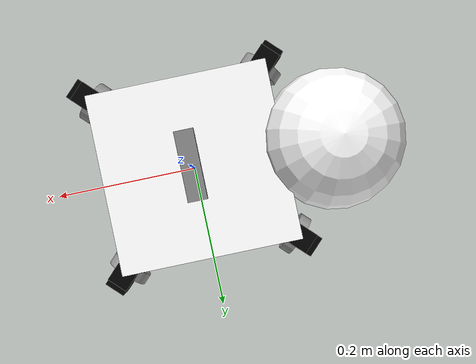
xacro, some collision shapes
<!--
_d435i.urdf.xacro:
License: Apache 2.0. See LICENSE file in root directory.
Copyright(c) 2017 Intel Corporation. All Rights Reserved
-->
<?xml version="1.0"?>
<robot name="conveyor" xmlns:xacro="http://www.ros.org/wiki/xacro">

    <!-- PROPERTY LIST -->

    <!-- Main Body Box -->
    <xacro:property name="base_length" value="0.255" /> <!-- in m-->
    <xacro:property name="base_height" value="0.04" /> <!-- in m-->
    <xacro:property name="base_mass" value="10" /> <!-- in kg-->

    <!-- caster wheel radius and height -->
    <!-- caster wheel mass -->
    <xacro:property name="servo_cube" value="0.03" /> <!-- in m-->
    <xacro:property name="servo_mass" value="2.5" /> <!-- in kg-->

    <!-- Hokuyo Laser scanner -->
    <xacro:property name="hokuyo_size" value="0.04" />

    <xacro:include filename="$(find conveyor_description_pkg)/urdf/wheel_joints.urdf.xacro" />

    <!-- ros_control plugin -->
    <gazebo>
        <plugin name="gazebo_ros_control" filename="libgazebo_ros_control.so">
            <robotSimType>gazebo_ros_control/DefaultRobotHWSim</robotSimType>
        </plugin>
    </gazebo>

    <!-- BASE-FOOTPRINT -->
    <!-- base_footprint is a fictitious link(frame) that is on the ground right below base_link
    origin -->
    <link name="base_footprint">
        <visual>
            <origin xyz="0 0 0" rpy="0 0 0" />
            <geometry>
                <box size="0.001 0.001 0.001" />
            </geometry>
        </visual>
    </link>

    <gazebo reference="base_footprint">
        <turnGravityOff>false</turnGravityOff>
        <mu1>0.2</mu1>
        <mu2>0.2</mu2>
        <material>Gazebo/Black</material>
    </gazebo>

    <joint name="base_footprint_joint" type="fixed">
        <origin xyz="0 0 ${wheel_radius}" rpy="0 0 0" />
        <parent link="base_footprint" />
        <child link="base_link" />
    </joint>

    <!-- BASE-LINK -->
    <!--Actual
    body/chassis of the robot-->
    <link name="base_link">
        <inertial>
            <mass value="${base_mass}" />
            <origin xyz="0 0 0" />
            <xacro:box_inertia m="${base_mass}" w="${base_length}" h="${base_length}"
                d="${base_height}" />
        </inertial>
        <visual>
            <origin xyz="0 0 0" rpy="0 0 0" />
            <geometry>
                <box size="${base_length} ${base_length} ${base_height}" />
            </geometry>
            <material name="White" />
        </visual>
        <collision>
            <origin xyz="0 0 0" rpy="0 0 0 " />
            <geometry>
                <box size="${base_length} ${base_length} ${base_height}" />
            </geometry>
        </collision>
    </link>
    <gazebo reference="base_link">
        <material>Gazebo/White</material>
        <turnGravityOff>false</turnGravityOff>
    </gazebo>

    <!-- palla -->
    <link name="ball_link">
        <inertial>
            <mass value="0.0000000001" />
            <origin xyz="0 0 0" />
            <xacro:box_inertia m="0.0000000001" w="0.0000000001" h="0.0000000001"
                d="0.0000000001" />
        </inertial>
        <visual>
            <origin xyz="0 0 0" rpy="0 0 0" />
            <geometry>
                <sphere radius="0.1"/>
            </geometry>
            <material name="White" />
        </visual>
        <collision>
            <origin xyz="0 0 0" rpy="0 0 0 " />
            <geometry>
                <sphere radius="0.0000000001"/>
            </geometry>
        </collision>
    </link>
    <gazebo reference="ball_link">
        <material>Gazebo/Red</material>
        <turnGravityOff>false</turnGravityOff>
    </gazebo>
    <joint name="ball_link" type="fixed">
        <origin xyz="-0.2 0  0" rpy="0 0 0" />
        <parent link="base_link" />
        <child link="ball_link" />
    </joint>

    <!-- Wheel 1 -->
    <xacro:servo front="front" right="left" parent="base_link" axisX="1" axisY="1"
        angle="${3*M_PI/4}" /> <!-- ${-M_PI/4} -->
    <xacro:wheel fb="front" lr="left" parent="servo_front_left_link" translateX="0"
        translateY="-0.005"
        translateZ="${-base_height-0.011}" flipY="1" flipX="0" rot="-1" />
    <!-- Wheel 2 -->
    <xacro:servo front="front" right="right" parent="base_link" axisX="1" axisY="-1"
        angle="${M_PI/4}" /> <!-- ${5*M_PI/4} -->
    <xacro:wheel fb="front" lr="right" parent="servo_front_right_link" translateX="0"
        translateY="-0.005"
        translateZ="${-base_height-0.011}" flipY="1" flipX="1" rot="1" />
    <!-- Wheel 3 -->
    <xacro:servo front="back" right="left" parent="base_link" axisX="-1" axisY="1"
        angle="${5*M_PI/4}" /> <!-- ${M_PI/4} -->
    <xacro:wheel fb="back" lr="left" parent="servo_back_left_link" translateX="0"
        translateY="-0.005"
        translateZ="${-base_height-0.011}" flipY="1" flipX="0" rot="-1" />
    <!-- Wheel 4 -->
    <xacro:servo front="back" right="right" parent="base_link" axisX="-1" axisY="-1"
        angle="${-M_PI/4}" /> <!-- ${3*M_PI/4} -->
    <xacro:wheel fb="back" lr="right" parent="servo_back_right_link" translateX="0"
        translateY="-0.005"
        translateZ="${-base_height-0.011}" flipY="1" flipX="1" rot="1" />

    <!-- laser -->

    <!-- Revolute joint -->
    <link name="camera_revolute_link"></link>
    <joint name="camera_joint" type="revolute">
        <parent link="base_link" />
        <child link="camera_revolute_link" />
        <origin xyz="0 0 0" rpy="0 0 0" />
        <axis xyz="0 0 1" />
        <limit lower="-3.14" upper="3.14" effort="50" velocity="10" />
    </joint>
    <!-- Transmission joint camera -->
    <transmission name="camera_tran">
        <type>transmission_interface/SimpleTransmission</type>
        <joint name="camera_joint">
            <hardwareInterface>hardware_interface/EffortJointInterface</hardwareInterface>
        </joint>
        <actuator name="camera_joint_motor">
            <hardwareInterface>hardware_interface/EffortJointInterface</hardwareInterface>
            <mechanicalReduction>1</mechanicalReduction>
        </actuator>
    </transmission>
    <!-- Camera RGBD realsense d435i -->
    <!-- github: https://github.com/m-tartari/realsense_gazebo_description?tab=readme-ov-file -->
    <xacro:arg name="robotns" default="conveyor" />
    <xacro:include filename="$(find realsense_gazebo_description)/urdf/_d435i.urdf.xacro"/>
    <xacro:sensor_d435i parent="camera_revolute_link" name="/$(arg robotns)/D435i_camera" topics_ns="$(arg robotns)/D435i_camera">
      <origin xyz="0.0 0.0 0.1" rpy="0.0 0.0 0.0"/>
    </xacro:sensor_d435i>

    <gazebo>
        <plugin name="p3d_base_controller" filename="libgazebo_ros_p3d.so">
            <alwaysOn>true</alwaysOn>
            <updateRate>50.0</updateRate>
            <bodyName>base_link</bodyName>
            <topicName>ground_truth/state</topicName>
            <gaussianNoise>0.01</gaussianNoise>
            <frameName>world</frameName>
            <xyzOffsets>0 0 0</xyzOffsets>
            <rpyOffsets>0 0 0</rpyOffsets>
        </plugin>
    </gazebo>

</robot>

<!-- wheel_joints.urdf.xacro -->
<robot name="wheel" xmlns:xacro="http://www.ros.org/wiki/xacro">

  <!--All
  units in m-kg-s-radians unit system -->
  <xacro:property name="M_PI" value="3.1415926535897931" />
  <xacro:property name="M_PI_2" value="1.570796327" />
  <xacro:property name="DEG_TO_RAD" value="0.017453293" />

  <!-- ################ Wheels ####################################### -->

  <xacro:property name="wheel_radius" value="0.03" /> <!-- in m-->
  <xacro:property name="wheel_height" value="0.017" /> <!-- in m-->
  <xacro:property name="wheel_mass" value="5" /> <!-- in kg-->

  <xacro:property name="base_x_origin_to_wheel_origin" value="0" />
  <xacro:property name="base_y_origin_to_wheel_origin" value="0" />
  <xacro:property name="base_z_origin_to_wheel_origin" value="0" />

  <!-- Macro Definition -->
  <xacro:macro name="cylinder_inertia" params="m r h">
    <inertia ixx="${m*(3*r*r+h*h)/12}" ixy="0" ixz="0"
      iyy="${m*(3*r*r+h*h)/12}" iyz="0"
      izz="${m*r*r/2}" />
  </xacro:macro>

  <xacro:macro name="wheel" params="fb lr parent translateX translateY translateZ flipY flipX rot">
    <!--fb
    : front, back ; lr: left, right -->
    <link name="${fb}_${lr}_wheel">
      <visual>
        <origin xyz="0 0 0" rpy="${flipY*M_PI/2} 0  0 " />
        <geometry>
          <cylinder length="${wheel_height}" radius="${wheel_radius}" />
        </geometry>
      </visual>
      <collision>
        <origin xyz="0 0 0" rpy="${flipY*M_PI/2} 0 0 " />
        <geometry>
          <cylinder length="${wheel_height}" radius="${wheel_radius}" />
        </geometry>
      </collision>
      <inertial>
        <mass value="${wheel_mass}" />
        <origin xyz="0 0 0" />
        <xacro:cylinder_inertia m="${wheel_mass}" r="${wheel_radius}" h="${wheel_height}" />
      </inertial>
    </link>

    <gazebo reference="${fb}_${lr}_wheel">
      <selfCollide>false</selfCollide>
      <surface>
        <friction>
          <ode>
            <mu>1.01</mu>
            <mu2>1.01</mu2>
            <fdir1>0 0 1</fdir1>
            <slip1>0</slip1>
            <slip2>0</slip2>
          </ode>
        </friction>
        <bounce>
          <restitution_coefficient>0.0</restitution_coefficient>
          <threshold>100000.0</threshold>
        </bounce>
        <contact>
          <ode>
            <soft_cfm>0.0</soft_cfm>
            <soft_erp>0.2</soft_erp>
            <kp>1000000000000.0</kp>
            <kd>1.0</kd>
            <max_vel>100.0</max_vel>
            <min_depth>0.001</min_depth>
          </ode>
        </contact>
      </surface>
      <material>Gazebo/Grey</material>
      <turnGravityOff>false</turnGravityOff>
    </gazebo>

    <joint name="${fb}_${lr}_wheel_joint" type="continuous">
      <parent link="${parent}" />
      <child link="${fb}_${lr}_wheel" />
      <origin xyz="${translateX} ${translateY} ${translateZ}" rpy="0 0 ${flipX*M_PI}" />
      <axis xyz="0 ${rot} 0" rpy="0  0" />
      <limit effort="100" velocity="100" />
      <joint_properties damping="0.0" friction="0.0" />
    </joint>

    <!-- Transmission -->
    <transmission name="${fb}_${lr}_wheel_joint_trans">
      <type>transmission_interface/SimpleTransmission</type>
      <joint name="${fb}_${lr}_wheel_joint">
        <hardwareInterface>hardware_interface/VelocityJointInterface</hardwareInterface>
      </joint>
      <actuator name="${fb}_${lr}_wheel_joint_motor">
        <hardwareInterface>hardware_interface/VelocityJointInterface</hardwareInterface>
        <mechanicalReduction>1</mechanicalReduction>
      </actuator>
    </transmission>

  </xacro:macro>

  <!-- ################ Joints ####################################### -->

  <!-- Box Inertia -->
  <xacro:macro name="box_inertia" params="m w h d">
    <inertia ixx="${m / 12.0 * (d*d + h*h)}" ixy="0.0" ixz="0.0" iyy="${m / 12.0 * (w*w + h*h)}"
      iyz="0.0" izz="${m / 12.0 * (w*w + d*d)}" />
  </xacro:macro>

  <!-- Defining the colors used in this robot -->
  <material name="Black">
    <color rgba="0.0 0.0 0.0 1.0" />
  </material>

  <material name="Red">
    <color rgba="0.8 0.0 0.0 1.0" />
  </material>

  <material name="White">
    <color rgba="1.0 1.0 1.0 1.0" />
  </material>

  <material name="Blue">
    <color rgba="0.0 0.0 0.8 1.0" />
  </material>

  <xacro:macro name="servo" params="front right parent axisX axisY angle">

    <!-- Servo link -->
    <link name="servo_${front}_${right}_link">

      <visual>
        <origin xyz="0 0 0" rpy="${M_PI/2} 0 0" />
        <geometry>
          <box size="${servo_cube} ${servo_cube} ${servo_cube}" />
        </geometry>
        <material name="Black" />
      </visual>
      <visual>
        <origin xyz="0 ${servo_cube/2} ${-servo_cube}" rpy="${M_PI/2} 0 0" />
        <geometry>
          <box size="${servo_cube} ${servo_cube*2} ${servo_cube/1.5}" />
        </geometry>
        <material name="Black" />
      </visual>

      <collision>
        <origin xyz="0 ${servo_cube/2} ${-servo_cube}" rpy="${M_PI/2} 0 0" />
        <geometry>
          <box size="${servo_cube} ${servo_cube*2} ${servo_cube/1.5}" />
        </geometry>
      </collision>
      <inertial>
        <mass value="${servo_mass}" />
        <origin xyz="0 0 0" />
        <xacro:box_inertia m="${servo_mass}" w="${servo_cube}" h="${servo_cube}" d="${servo_cube}" />
      </inertial>
    </link>

    <!-- Servo joint -->
    <joint name="servo_${front}_${right}_joint" type="revolute">
      <parent link="${parent}" />
      <child link="servo_${front}_${right}_link" />
      <origin xyz="${axisX * base_length/2}  ${axisY *base_length/2} 0" rpy="0 0 ${angle}" />
      <axis xyz="0 0 1" rpy="0 0 0" />
      <limit effort="500" velocity="500" lower="${1/2*M_PI}" upper="${3/2*M_PI}" />
      <dynamics damping="0" friction="0" />
    </joint>

    <gazebo reference="servo_${front}_${right}_link">
      <selfCollide>false</selfCollide>
      <turnGravityOff>false</turnGravityOff>
      <surface>
        <friction>
          <ode>
            <mu>1.01</mu>
            <mu2>1.01</mu2>
            <fdir1>0 0 1</fdir1>
            <slip1>0</slip1>
            <slip2>0</slip2>
          </ode>
        </friction>
        <bounce>
          <restitution_coefficient>0.0</restitution_coefficient>
          <threshold>100000.0</threshold>
        </bounce>
        <contact>
          <ode>
            <soft_cfm>0.0</soft_cfm>
            <soft_erp>0.2</soft_erp>
            <kp>1000000000000.0</kp>
            <kd>1.0</kd>
            <max_vel>100.0</max_vel>
            <min_depth>0.001</min_depth>
          </ode>
        </contact>
      </surface>
    </gazebo>

    <!-- Servo transmission -->
    <transmission name="tran_servo_${front}_${right}">
      <type>transmission_interface/SimpleTransmission</type>
      <joint name="servo_${front}_${right}_joint">
        <hardwareInterface>hardware_interface/EffortJointInterface</hardwareInterface>
      </joint>
      <actuator name="servo_${front}_${right}_motor">
        <hardwareInterface>hardware_interface/EffortJointInterface</hardwareInterface>
        <mechanicalReduction>1</mechanicalReduction>
      </actuator>
    </transmission>

  </xacro:macro>

</robot>

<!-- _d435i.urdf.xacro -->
<robot name="sensor_d435i" xmlns:xacro="http://ros.org/wiki/xacro">
  <!--File includes-->
  <xacro:include filename="$(find realsense_gazebo_description)/urdf/_d435i.gazebo.xacro"/>

  <xacro:macro name="sensor_d435i" params="parent
                                          name:=camera
                                          topics_ns:=camera
                                          visualize:=false
                                          align_depth:=true
                                          enable_pointCloud:=false

                                          unite_imu_method:=false
                                          accel_fps:=250
                                          gyro_fps:=400

                                          clip_distance:=-1.0
                                          depth_width:=640
                                          depth_height:=480
                                          depth_fps:=30

                                          infra_width:=640
                                          infra_height:=480
                                          infra_fps:=30

                                          color_width:=640
                                          color_height:=480
                                          color_fps:=30

                                          *origin">
    <xacro:property name="M_PI" value="3.1415926535897931"/>

    <!-- The following values are approximate, and the camera node
     publishing TF values with actual calibrated camera extrinsic values -->
    <xacro:property name="d435i_cam_depth_to_left_ir_offset" value="0.0"/>
    <xacro:property name="d435i_cam_depth_to_right_ir_offset" value="-0.050"/>
    <xacro:property name="d435i_cam_depth_to_color_offset" value="0.015"/>

    <!-- The following values model the aluminum peripherial case for the
  	D435 camera, with the camera joint represented by the actual
  	peripherial camera tripod mount -->
    <xacro:property name="d435i_cam_width" value="0.090"/>
    <xacro:property name="d435i_cam_height" value="0.025"/>
    <xacro:property name="d435i_cam_depth" value="0.02505"/>
    <xacro:property name="d435i_cam_mount_from_center_offset" value="0.0149"/>

    <!-- The following offset is relative the the physical D435 camera peripherial
  	camera tripod mount -->
    <xacro:property name="d435i_cam_depth_px" value="${d435i_cam_mount_from_center_offset}"/>
    <xacro:property name="d435i_cam_depth_py" value="0.0175"/>
    <xacro:property name="d435i_cam_depth_pz" value="${d435i_cam_height/2}"/>

    <material name="${name}_aluminum">
	  <color rgba="0.5 0.5 0.5 1"/>
    </material>

    <!-- camera body, with origin at bottom screw mount -->
    <joint name="${name}_joint" type="fixed">
      <xacro:insert_block name="origin"/>
      <parent link="${parent}"/>
      <child link="${name}_bottom_screw_frame"/>
    </joint>
    <link name="${name}_bottom_screw_frame"/>

    <joint name="${name}_link_joint" type="fixed">
      <origin xyz="0 ${d435i_cam_depth_py} ${d435i_cam_depth_pz}" rpy="0 0 0"/>
      <parent link="${name}_bottom_screw_frame"/>
      <child link="${name}_link"/>
    </joint>

    <link name="${name}_link">
      <visual>
      <origin xyz="${d435i_cam_mount_from_center_offset} ${-d435i_cam_depth_py} 0" rpy="${M_PI/2} 0 ${M_PI/2}"/>
        <geometry>
          <mesh filename="package://realsense_gazebo_description/meshes/d435.dae"/>
        </geometry>
        <material name="${name}_aluminum"/>
      </visual>
      <collision>
        <origin xyz="0 ${-d435i_cam_depth_py} 0" rpy="0 0 0"/>
        <geometry>
        <box size="${d435i_cam_depth} ${d435i_cam_width} ${d435i_cam_height}"/>
        </geometry>
      </collision>
      <inertial>
        <!-- The following are not reliable values, and should not be used for modeling -->
        <mass value="0.564"/>
        <origin xyz="0 0 0"/>
        <inertia ixx="0.003881243" ixy="0.0" ixz="0.0" iyy="0.000498940" iyz="0.0" izz="0.003879257"/>
      </inertial>
    </link>

    <!-- camera depth joints and links -->
    <joint name="${name}_depth_joint" type="fixed">
      <origin xyz="0 0 0" rpy="0 0 0"/>
      <parent link="${name}_link"/>
      <child link="${name}_depth_frame"/>
    </joint>
    <link name="${name}_depth_frame"/>

    <joint name="${name}_depth_optical_joint" type="fixed">
      <origin xyz="0 0 0" rpy="${-M_PI/2} 0 ${-M_PI/2}"/>
      <parent link="${name}_depth_frame"/>
      <child link="${name}_depth_optical_frame"/>
    </joint>
    <link name="${name}_depth_optical_frame"/>

    <!-- camera left IR joints and links -->
    <joint name="${name}_left_ir_joint" type="fixed">
      <origin xyz="0 ${d435i_cam_depth_to_left_ir_offset} 0" rpy="0 0 0"/>
      <parent link="${name}_depth_frame"/>
      <child link="${name}_left_ir_frame"/>
    </joint>
    <link name="${name}_left_ir_frame"/>

    <joint name="${name}_left_ir_optical_joint" type="fixed">
      <origin xyz="0 0 0" rpy="${-M_PI/2} 0 ${-M_PI/2}"/>
      <parent link="${name}_left_ir_frame"/>
      <child link="${name}_left_ir_optical_frame"/>
    </joint>
    <link name="${name}_left_ir_optical_frame"/>

    <!-- camera right IR joints and links -->
    <joint name="${name}_right_ir_joint" type="fixed">
      <origin xyz="0 ${d435i_cam_depth_to_right_ir_offset} 0" rpy="0 0 0"/>
      <parent link="${name}_depth_frame"/>
      <child link="${name}_right_ir_frame"/>
    </joint>
    <link name="${name}_right_ir_frame"/>

    <joint name="${name}_right_ir_optical_joint" type="fixed">
      <origin xyz="0 0 0" rpy="${-M_PI/2} 0 ${-M_PI/2}"/>
      <parent link="${name}_right_ir_frame"/>
      <child link="${name}_right_ir_optical_frame"/>
    </joint>
    <link name="${name}_right_ir_optical_frame"/>

    <!-- camera color joints and links -->
    <joint name="${name}_color_joint" type="fixed">
      <origin xyz="0 ${d435i_cam_depth_to_color_offset} 0" rpy="0 0 0"/>
      <parent link="${name}_depth_frame"/>
      <child link="${name}_color_frame"/>
    </joint>
    <link name="${name}_color_frame"/>

    <joint name="${name}_color_optical_joint" type="fixed">
      <origin xyz="0 0 0" rpy="${-M_PI/2} 0 ${-M_PI/2}"/>
      <parent link="${name}_color_frame"/>
      <child link="${name}_rgb_optical_frame"/>
    </joint>
    <link name="${name}_rgb_optical_frame"/>

    <!-- camera accel joints and links -->
    <joint name="${name}_accel_joint" type="fixed">
      <origin xyz="-0.00174 0.00552 0.0176" rpy="0 0 0"/>
      <parent link="${name}_link"/>
      <child link="${name}_accel_frame"/>
    </joint>
    <link name="${name}_accel_frame"/>

    <joint name="${name}_accel_optical_joint" type="fixed">
      <origin xyz="0 0 0" rpy="${-M_PI/2} 0 ${-M_PI/2}"/>
      <parent link="${name}_accel_frame"/>
      <child link="${name}_accel_optical_frame"/>
    </joint>
    <link name="${name}_accel_optical_frame"/>

    <!-- camera gyro joints and links -->
    <joint name="${name}_gyro_joint" type="fixed">
      <origin xyz="-0.00174 0.00552 0.0176" rpy="0 0 0"/>
      <parent link="${name}_link"/>
      <child link="${name}_gyro_frame"/>
    </joint>
    <link name="${name}_gyro_frame"/>

    <joint name="${name}_gyro_optical_joint" type="fixed">
      <origin xyz="0 0 0" rpy="${-M_PI/2} 0 ${-M_PI/2}"/>
      <parent link="${name}_gyro_frame"/>
      <child link="${name}_gyro_optical_frame"/>
    </joint>
    <link name="${name}_gyro_optical_frame"/>

    <!-- Realsense Gazebo Plugin -->
    <xacro:gazebo_d435i camera_name="${name}"
                        topics_ns="${topics_ns}"
                        reference_link="${name}_link"

                        depth_optical_frame="${name}_depth_optical_frame"
                        depth_width="${depth_width}"
                        depth_height="${depth_height}"
                        depth_fps="${depth_fps}"

                        color_optical_frame="/${name}_color_optical_frame"
                        color_width="${color_width}"
                        color_height="${color_height}"
                        color_fps="${color_fps}"

                        infrared1_optical_frame="${name}_left_ir_optical_frame"
                        infrared2_optical_frame="${name}_right_ir_optical_frame"
                        infra_width="${infra_width}"
                        infra_height="${infra_height}"
                        infra_fps="${infra_fps}"

                        accel_optical_frame="${name}_accel_optical_frame"
                        gyro_optical_frame="${name}_gyro_optical_frame"
                        accel_fps="${accel_fps}"
                        gyro_fps="${gyro_fps}"

                        enable_pointCloud="${enable_pointCloud}"
                        unite_imu_method="${unite_imu_method}"
                        clip_distance="${clip_distance}"
                        align_depth="${align_depth}"
                        visualize="${visualize}"
    />

  </xacro:macro>
</robot>
